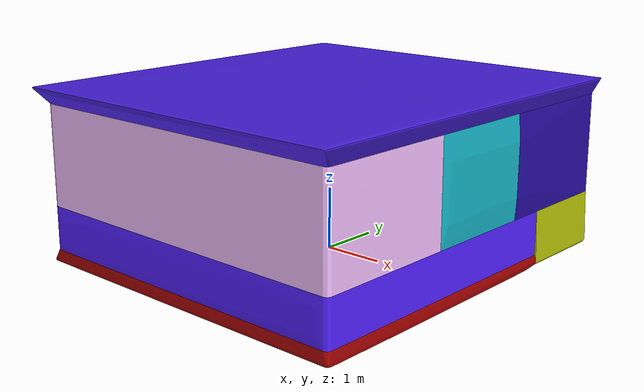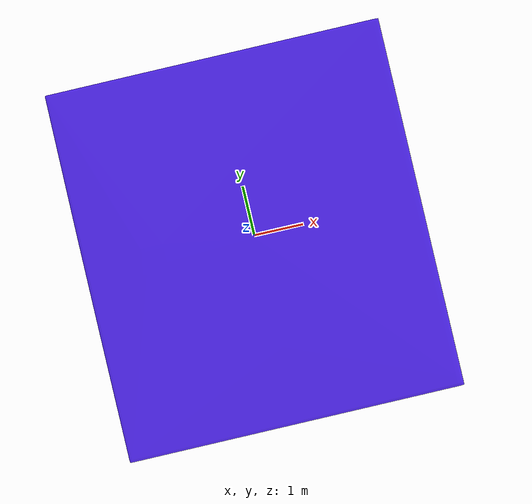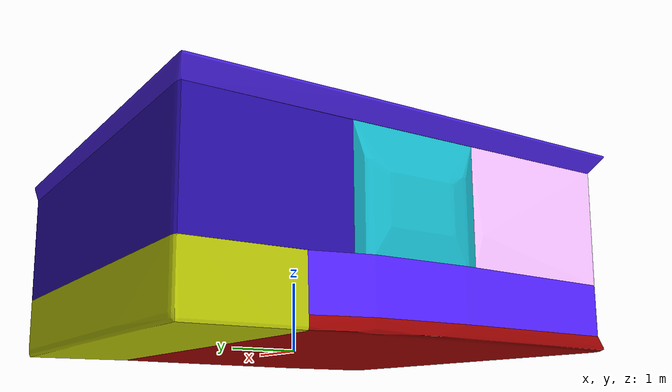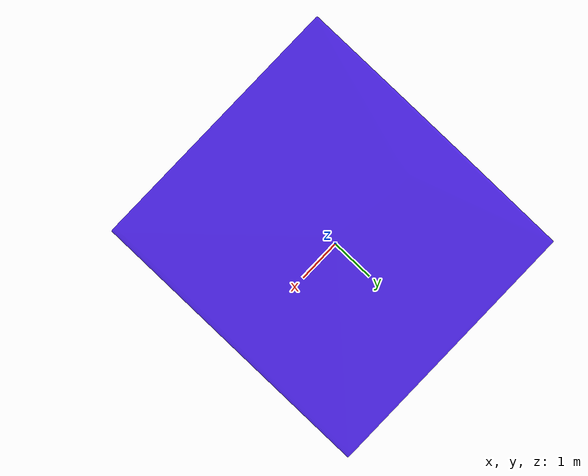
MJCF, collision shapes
<mujoco model="charite_university_hospital_-_operating_room">
  <compiler angle="radian" eulerseq="xyz"/>
  <default>
    <default class="visual">
      <geom group="2" type="mesh" contype="0" conaffinity="0"/>
    </default>
    <default class="collision">
      <geom group="3" type="mesh"/>
    </default>
  </default>
  <asset>
    <material name="material_0" specular="0.4000000000000001" shininess="0.001" rgba="0.05098039 0.16470588 0.24705882 1.0"/>
    <texture type="2d" name="material_1" file="material_1.png"/>
    <material name="material_1" texture="material_1" specular="0.4000000000000001" shininess="0.001"/>
    <texture type="2d" name="material_2" file="material_2.png"/>
    <material name="material_2" texture="material_2" specular="0.4000000000000001" shininess="0.001"/>
    <texture type="2d" name="material_3" file="material_3.png"/>
    <material name="material_3" texture="material_3" specular="0.4000000000000001" shininess="0.001"/>
    <texture type="2d" name="material_4" file="material_4.png"/>
    <material name="material_4" texture="material_4" specular="0.4000000000000001" shininess="0.001"/>
    <mesh file="charite_university_hospital_-_operating_room_0.obj"/>
    <mesh file="charite_university_hospital_-_operating_room_1.obj"/>
    <mesh file="charite_university_hospital_-_operating_room_2.obj"/>
    <mesh file="charite_university_hospital_-_operating_room_3.obj"/>
    <mesh file="charite_university_hospital_-_operating_room_4.obj"/>
    <mesh file="charite_university_hospital_-_operating_room_collision_0.obj"/>
    <mesh file="charite_university_hospital_-_operating_room_collision_1.obj"/>
    <mesh file="charite_university_hospital_-_operating_room_collision_2.obj"/>
    <mesh file="charite_university_hospital_-_operating_room_collision_3.obj"/>
    <mesh file="charite_university_hospital_-_operating_room_collision_4.obj"/>
    <mesh file="charite_university_hospital_-_operating_room_collision_5.obj"/>
    <mesh file="charite_university_hospital_-_operating_room_collision_6.obj"/>
  </asset>
  <worldbody>
    <body name="charite_university_hospital_-_operating_room" euler="1.57 0 0">
      <geom mesh="charite_university_hospital_-_operating_room_0" material="material_4" class="visual"/>
      <geom mesh="charite_university_hospital_-_operating_room_1" material="material_3" class="visual"/>
      <geom mesh="charite_university_hospital_-_operating_room_2" material="material_2" class="visual"/>
      <geom mesh="charite_university_hospital_-_operating_room_3" material="material_1" class="visual"/>
      <geom mesh="charite_university_hospital_-_operating_room_4" material="material_0" class="visual"/>
      <geom mesh="charite_university_hospital_-_operating_room_collision_0" rgba="0.2792682527922832 0.12318861818646076 0.8747944538167339 1" class="collision"/>
      <geom mesh="charite_university_hospital_-_operating_room_collision_1" rgba="0.7062261746820414 0.7566369212557152 0.019338823488351475 1" class="collision"/>
      <geom mesh="charite_university_hospital_-_operating_room_collision_2" rgba="0.9513356452975158 0.747095488587192 0.9928231557749739 1" class="collision"/>
      <geom mesh="charite_university_hospital_-_operating_room_collision_3" rgba="0.08549999116364193 0.7034601437721361 0.7741338577386097 1" class="collision"/>
      <geom mesh="charite_university_hospital_-_operating_room_collision_4" rgba="0.15045658132040207 0.04659432532546559 0.630677315227884 1" class="collision"/>
      <geom mesh="charite_university_hospital_-_operating_room_collision_5" rgba="0.3188759208327252 0.12433921269754034 0.9949336841718416 1" class="collision"/>
      <geom mesh="charite_university_hospital_-_operating_room_collision_6" rgba="0.5883886473389217 0.00042628404539390985 0.00025707033071420415 1" class="collision"/>
    </body>
  </worldbody>
</mujoco>
